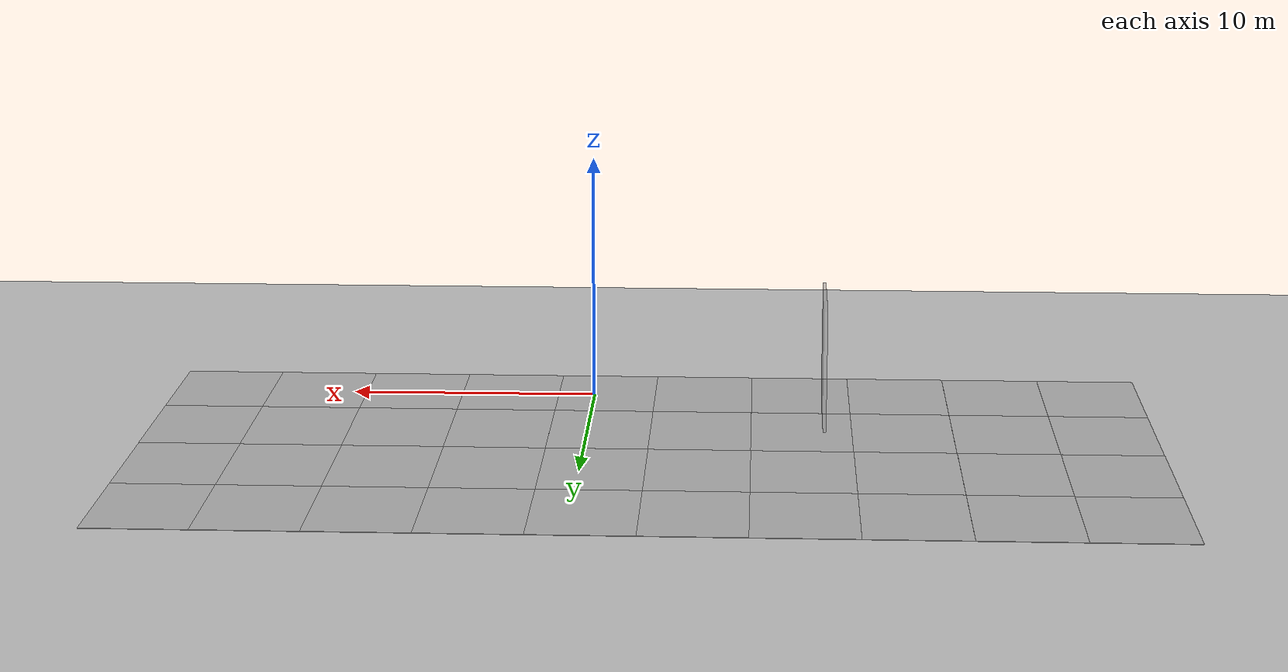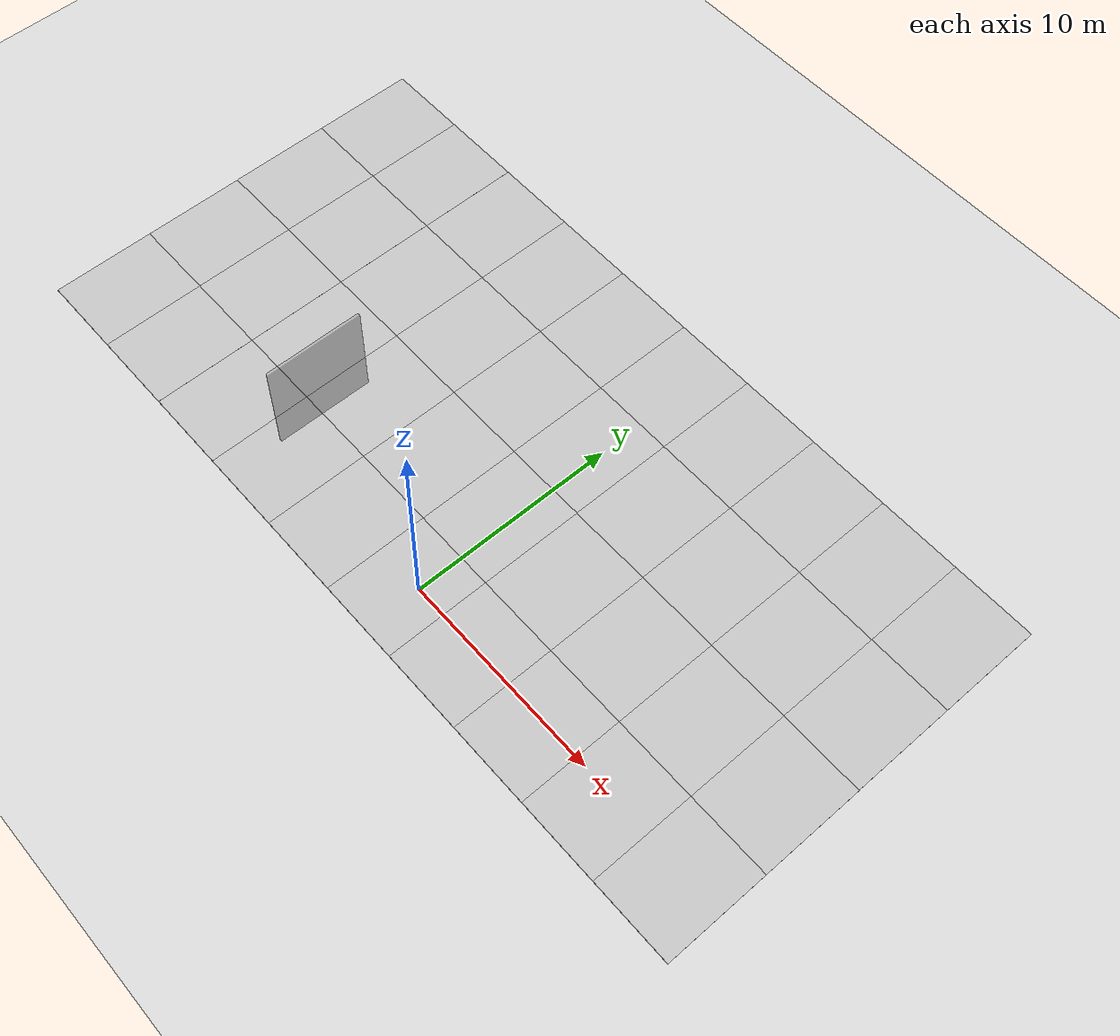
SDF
<sdf version="1.6">
 <world name="default">
  <model name="ground_plane">
   <static>1</static>
   <link name="link">
    <collision name="collision">
     <geometry><plane><normal>0 0 1</normal><size>100 100</size></plane></geometry>
     <surface>
      <contact><collide_bitmask>65535</collide_bitmask></contact>
      <friction><ode><mu>100</mu><mu2>50</mu2></ode></friction>
     </surface>
    </collision>
    <visual name="visual">
     <cast_shadows>0</cast_shadows>
     <geometry><plane><normal>0 0 1</normal><size>100 100</size></plane></geometry>
     <material>
      <script><uri>file://media/materials/scripts/gazebo.material</uri><name>Gazebo/Grey</name></script>
     </material>
    </visual>
   </link>
  </model>
  <model name="Ground_Soil_1">
   <model name="mud_box">
    <static>1</static>
    <link name="link">
     <collision name="collision"><geometry><box><size>8 10 0.02</size></box></geometry></collision>
     <visual name="visual_1">
      <pose>-2 2.5 0 0 -0 0</pose>
      <cast_shadows>0</cast_shadows>
      <geometry><box><size>4 5 0.02</size></box></geometry>
      <material>
       <script>
        <uri>model://mud_box/materials/scripts</uri>
        <uri>model://mud_box/materials/textures</uri>
        <name>vrc/mud</name>
       </script>
      </material>
     </visual>
     <visual name="visual_2">
      <pose>2 2.5 0 0 -0 0</pose>
      <cast_shadows>0</cast_shadows>
      <geometry><box><size>4 5 0.02</size></box></geometry>
      <material>
       <script>
        <uri>model://mud_box/materials/scripts</uri>
        <uri>model://mud_box/materials/textures</uri>
        <name>vrc/mud</name>
       </script>
      </material>
     </visual>
     <visual name="visual_3">
      <pose>2 -2.5 0 0 -0 0</pose>
      <cast_shadows>0</cast_shadows>
      <geometry><box><size>4 5 0.02</size></box></geometry>
      <material>
       <script>
        <uri>model://mud_box/materials/scripts</uri>
        <uri>model://mud_box/materials/textures</uri>
        <name>vrc/mud</name>
       </script>
      </material>
     </visual>
     <visual name="visual_4">
      <pose>-2 -2.5 0 0 -0 0</pose>
      <cast_shadows>0</cast_shadows>
      <geometry><box><size>4 5 0.02</size></box></geometry>
      <material>
       <script>
        <uri>model://mud_box/materials/scripts</uri>
        <uri>model://mud_box/materials/textures</uri>
        <name>vrc/mud</name>
       </script>
      </material>
     </visual>
    </link>
    <pose>-16.0013 0.000118 0 0 -0 0</pose>
   </model>
   <model name="mud_box_0">
    <static>1</static>
    <link name="link">
     <collision name="collision"><geometry><box><size>8 10 0.02</size></box></geometry></collision>
     <visual name="visual_1">
      <pose>-2 2.5 0 0 -0 0</pose>
      <cast_shadows>0</cast_shadows>
      <geometry><box><size>4 5 0.02</size></box></geometry>
      <material>
       <script>
        <uri>model://mud_box/materials/scripts</uri>
        <uri>model://mud_box/materials/textures</uri>
        <name>vrc/mud</name>
       </script>
      </material>
     </visual>
     <visual name="visual_2">
      <pose>2 2.5 0 0 -0 0</pose>
      <cast_shadows>0</cast_shadows>
      <geometry><box><size>4 5 0.02</size></box></geometry>
      <material>
       <script>
        <uri>model://mud_box/materials/scripts</uri>
        <uri>model://mud_box/materials/textures</uri>
        <name>vrc/mud</name>
       </script>
      </material>
     </visual>
     <visual name="visual_3">
      <pose>2 -2.5 0 0 -0 0</pose>
      <cast_shadows>0</cast_shadows>
      <geometry><box><size>4 5 0.02</size></box></geometry>
      <material>
       <script>
        <uri>model://mud_box/materials/scripts</uri>
        <uri>model://mud_box/materials/textures</uri>
        <name>vrc/mud</name>
       </script>
      </material>
     </visual>
     <visual name="visual_4">
      <pose>-2 -2.5 0 0 -0 0</pose>
      <cast_shadows>0</cast_shadows>
      <geometry><box><size>4 5 0.02</size></box></geometry>
      <material>
       <script>
        <uri>model://mud_box/materials/scripts</uri>
        <uri>model://mud_box/materials/textures</uri>
        <name>vrc/mud</name>
       </script>
      </material>
     </visual>
    </link>
    <pose>-7.99939 9.1e-05 0 0 -0 0</pose>
   </model>
   <model name="mud_box_1">
    <static>1</static>
    <link name="link">
     <collision name="collision"><geometry><box><size>8 10 0.02</size></box></geometry></collision>
     <visual name="visual_1">
      <pose>-2 2.5 0 0 -0 0</pose>
      <cast_shadows>0</cast_shadows>
      <geometry><box><size>4 5 0.02</size></box></geometry>
      <material>
       <script>
        <uri>model://mud_box/materials/scripts</uri>
        <uri>model://mud_box/materials/textures</uri>
        <name>vrc/mud</name>
       </script>
      </material>
     </visual>
     <visual name="visual_2">
      <pose>2 2.5 0 0 -0 0</pose>
      <cast_shadows>0</cast_shadows>
      <geometry><box><size>4 5 0.02</size></box></geometry>
      <material>
       <script>
        <uri>model://mud_box/materials/scripts</uri>
        <uri>model://mud_box/materials/textures</uri>
        <name>vrc/mud</name>
       </script>
      </material>
     </visual>
     <visual name="visual_3">
      <pose>2 -2.5 0 0 -0 0</pose>
      <cast_shadows>0</cast_shadows>
      <geometry><box><size>4 5 0.02</size></box></geometry>
      <material>
       <script>
        <uri>model://mud_box/materials/scripts</uri>
        <uri>model://mud_box/materials/textures</uri>
        <name>vrc/mud</name>
       </script>
      </material>
     </visual>
     <visual name="visual_4">
      <pose>-2 -2.5 0 0 -0 0</pose>
      <cast_shadows>0</cast_shadows>
      <geometry><box><size>4 5 0.02</size></box></geometry>
      <material>
       <script>
        <uri>model://mud_box/materials/scripts</uri>
        <uri>model://mud_box/materials/textures</uri>
        <name>vrc/mud</name>
       </script>
      </material>
     </visual>
    </link>
    <pose>0.000809 -0.000342 0 0 -0 0</pose>
   </model>
   <model name="mud_box_2">
    <static>1</static>
    <link name="link">
     <collision name="collision"><geometry><box><size>8 10 0.02</size></box></geometry></collision>
     <visual name="visual_1">
      <pose>-2 2.5 0 0 -0 0</pose>
      <cast_shadows>0</cast_shadows>
      <geometry><box><size>4 5 0.02</size></box></geometry>
      <material>
       <script>
        <uri>model://mud_box/materials/scripts</uri>
        <uri>model://mud_box/materials/textures</uri>
        <name>vrc/mud</name>
       </script>
      </material>
     </visual>
     <visual name="visual_2">
      <pose>2 2.5 0 0 -0 0</pose>
      <cast_shadows>0</cast_shadows>
      <geometry><box><size>4 5 0.02</size></box></geometry>
      <material>
       <script>
        <uri>model://mud_box/materials/scripts</uri>
        <uri>model://mud_box/materials/textures</uri>
        <name>vrc/mud</name>
       </script>
      </material>
     </visual>
     <visual name="visual_3">
      <pose>2 -2.5 0 0 -0 0</pose>
      <cast_shadows>0</cast_shadows>
      <geometry><box><size>4 5 0.02</size></box></geometry>
      <material>
       <script>
        <uri>model://mud_box/materials/scripts</uri>
        <uri>model://mud_box/materials/textures</uri>
        <name>vrc/mud</name>
       </script>
      </material>
     </visual>
     <visual name="visual_4">
      <pose>-2 -2.5 0 0 -0 0</pose>
      <cast_shadows>0</cast_shadows>
      <geometry><box><size>4 5 0.02</size></box></geometry>
      <material>
       <script>
        <uri>model://mud_box/materials/scripts</uri>
        <uri>model://mud_box/materials/textures</uri>
        <name>vrc/mud</name>
       </script>
      </material>
     </visual>
    </link>
    <pose>8.00089 -0.000148 0 0 -0 0</pose>
   </model>
   <model name="mud_box_3">
    <static>1</static>
    <link name="link">
     <collision name="collision"><geometry><box><size>8 10 0.02</size></box></geometry></collision>
     <visual name="visual_1">
      <pose>-2 2.5 0 0 -0 0</pose>
      <cast_shadows>0</cast_shadows>
      <geometry><box><size>4 5 0.02</size></box></geometry>
      <material>
       <script>
        <uri>model://mud_box/materials/scripts</uri>
        <uri>model://mud_box/materials/textures</uri>
        <name>vrc/mud</name>
       </script>
      </material>
     </visual>
     <visual name="visual_2">
      <pose>2 2.5 0 0 -0 0</pose>
      <cast_shadows>0</cast_shadows>
      <geometry><box><size>4 5 0.02</size></box></geometry>
      <material>
       <script>
        <uri>model://mud_box/materials/scripts</uri>
        <uri>model://mud_box/materials/textures</uri>
        <name>vrc/mud</name>
       </script>
      </material>
     </visual>
     <visual name="visual_3">
      <pose>2 -2.5 0 0 -0 0</pose>
      <cast_shadows>0</cast_shadows>
      <geometry><box><size>4 5 0.02</size></box></geometry>
      <material>
       <script>
        <uri>model://mud_box/materials/scripts</uri>
        <uri>model://mud_box/materials/textures</uri>
        <name>vrc/mud</name>
       </script>
      </material>
     </visual>
     <visual name="visual_4">
      <pose>-2 -2.5 0 0 -0 0</pose>
      <cast_shadows>0</cast_shadows>
      <geometry><box><size>4 5 0.02</size></box></geometry>
      <material>
       <script>
        <uri>model://mud_box/materials/scripts</uri>
        <uri>model://mud_box/materials/textures</uri>
        <name>vrc/mud</name>
       </script>
      </material>
     </visual>
    </link>
    <pose>15.9991 0.000313 0 0 -0 0</pose>
   </model>
   <static>0</static>
   <pose>-2.5027 2.22713 0 0 -0 0</pose>
  </model>
  <model name="Ground_Soil_2">
   <model name="mud_box">
    <static>1</static>
    <link name="link">
     <collision name="collision"><geometry><box><size>8 10 0.02</size></box></geometry></collision>
     <visual name="visual_1">
      <pose>-2 2.5 0 0 -0 0</pose>
      <cast_shadows>0</cast_shadows>
      <geometry><box><size>4 5 0.02</size></box></geometry>
      <material>
       <script>
        <uri>model://mud_box/materials/scripts</uri>
        <uri>model://mud_box/materials/textures</uri>
        <name>vrc/mud</name>
       </script>
      </material>
     </visual>
     <visual name="visual_2">
      <pose>2 2.5 0 0 -0 0</pose>
      <cast_shadows>0</cast_shadows>
      <geometry><box><size>4 5 0.02</size></box></geometry>
      <material>
       <script>
        <uri>model://mud_box/materials/scripts</uri>
        <uri>model://mud_box/materials/textures</uri>
        <name>vrc/mud</name>
       </script>
      </material>
     </visual>
     <visual name="visual_3">
      <pose>2 -2.5 0 0 -0 0</pose>
      <cast_shadows>0</cast_shadows>
      <geometry><box><size>4 5 0.02</size></box></geometry>
      <material>
       <script>
        <uri>model://mud_box/materials/scripts</uri>
        <uri>model://mud_box/materials/textures</uri>
        <name>vrc/mud</name>
       </script>
      </material>
     </visual>
     <visual name="visual_4">
      <pose>-2 -2.5 0 0 -0 0</pose>
      <cast_shadows>0</cast_shadows>
      <geometry><box><size>4 5 0.02</size></box></geometry>
      <material>
       <script>
        <uri>model://mud_box/materials/scripts</uri>
        <uri>model://mud_box/materials/textures</uri>
        <name>vrc/mud</name>
       </script>
      </material>
     </visual>
    </link>
    <pose>-16.0013 0.000118 0 0 -0 0</pose>
   </model>
   <model name="mud_box_0">
    <static>1</static>
    <link name="link">
     <collision name="collision"><geometry><box><size>8 10 0.02</size></box></geometry></collision>
     <visual name="visual_1">
      <pose>-2 2.5 0 0 -0 0</pose>
      <cast_shadows>0</cast_shadows>
      <geometry><box><size>4 5 0.02</size></box></geometry>
      <material>
       <script>
        <uri>model://mud_box/materials/scripts</uri>
        <uri>model://mud_box/materials/textures</uri>
        <name>vrc/mud</name>
       </script>
      </material>
     </visual>
     <visual name="visual_2">
      <pose>2 2.5 0 0 -0 0</pose>
      <cast_shadows>0</cast_shadows>
      <geometry><box><size>4 5 0.02</size></box></geometry>
      <material>
       <script>
        <uri>model://mud_box/materials/scripts</uri>
        <uri>model://mud_box/materials/textures</uri>
        <name>vrc/mud</name>
       </script>
      </material>
     </visual>
     <visual name="visual_3">
      <pose>2 -2.5 0 0 -0 0</pose>
      <cast_shadows>0</cast_shadows>
      <geometry><box><size>4 5 0.02</size></box></geometry>
      <material>
       <script>
        <uri>model://mud_box/materials/scripts</uri>
        <uri>model://mud_box/materials/textures</uri>
        <name>vrc/mud</name>
       </script>
      </material>
     </visual>
     <visual name="visual_4">
      <pose>-2 -2.5 0 0 -0 0</pose>
      <cast_shadows>0</cast_shadows>
      <geometry><box><size>4 5 0.02</size></box></geometry>
      <material>
       <script>
        <uri>model://mud_box/materials/scripts</uri>
        <uri>model://mud_box/materials/textures</uri>
        <name>vrc/mud</name>
       </script>
      </material>
     </visual>
    </link>
    <pose>-7.99939 9.1e-05 0 0 -0 0</pose>
   </model>
   <model name="mud_box_1">
    <static>1</static>
    <link name="link">
     <collision name="collision"><geometry><box><size>8 10 0.02</size></box></geometry></collision>
     <visual name="visual_1">
      <pose>-2 2.5 0 0 -0 0</pose>
      <cast_shadows>0</cast_shadows>
      <geometry><box><size>4 5 0.02</size></box></geometry>
      <material>
       <script>
        <uri>model://mud_box/materials/scripts</uri>
        <uri>model://mud_box/materials/textures</uri>
        <name>vrc/mud</name>
       </script>
      </material>
     </visual>
     <visual name="visual_2">
      <pose>2 2.5 0 0 -0 0</pose>
      <cast_shadows>0</cast_shadows>
      <geometry><box><size>4 5 0.02</size></box></geometry>
      <material>
       <script>
        <uri>model://mud_box/materials/scripts</uri>
        <uri>model://mud_box/materials/textures</uri>
        <name>vrc/mud</name>
       </script>
      </material>
     </visual>
     <visual name="visual_3">
      <pose>2 -2.5 0 0 -0 0</pose>
      <cast_shadows>0</cast_shadows>
      <geometry><box><size>4 5 0.02</size></box></geometry>
      <material>
       <script>
        <uri>model://mud_box/materials/scripts</uri>
        <uri>model://mud_box/materials/textures</uri>
        <name>vrc/mud</name>
       </script>
      </material>
     </visual>
     <visual name="visual_4">
      <pose>-2 -2.5 0 0 -0 0</pose>
      <cast_shadows>0</cast_shadows>
      <geometry><box><size>4 5 0.02</size></box></geometry>
      <material>
       <script>
        <uri>model://mud_box/materials/scripts</uri>
        <uri>model://mud_box/materials/textures</uri>
        <name>vrc/mud</name>
       </script>
      </material>
     </visual>
    </link>
    <pose>0.000809 -0.000342 0 0 -0 0</pose>
   </model>
   <model name="mud_box_2">
    <static>1</static>
    <link name="link">
     <collision name="collision"><geometry><box><size>8 10 0.02</size></box></geometry></collision>
     <visual name="visual_1">
      <pose>-2 2.5 0 0 -0 0</pose>
      <cast_shadows>0</cast_shadows>
      <geometry><box><size>4 5 0.02</size></box></geometry>
      <material>
       <script>
        <uri>model://mud_box/materials/scripts</uri>
        <uri>model://mud_box/materials/textures</uri>
        <name>vrc/mud</name>
       </script>
      </material>
     </visual>
     <visual name="visual_2">
      <pose>2 2.5 0 0 -0 0</pose>
      <cast_shadows>0</cast_shadows>
      <geometry><box><size>4 5 0.02</size></box></geometry>
      <material>
       <script>
        <uri>model://mud_box/materials/scripts</uri>
        <uri>model://mud_box/materials/textures</uri>
        <name>vrc/mud</name>
       </script>
      </material>
     </visual>
     <visual name="visual_3">
      <pose>2 -2.5 0 0 -0 0</pose>
      <cast_shadows>0</cast_shadows>
      <geometry><box><size>4 5 0.02</size></box></geometry>
      <material>
       <script>
        <uri>model://mud_box/materials/scripts</uri>
        <uri>model://mud_box/materials/textures</uri>
        <name>vrc/mud</name>
       </script>
      </material>
     </visual>
     <visual name="visual_4">
      <pose>-2 -2.5 0 0 -0 0</pose>
      <cast_shadows>0</cast_shadows>
      <geometry><box><size>4 5 0.02</size></box></geometry>
      <material>
       <script>
        <uri>model://mud_box/materials/scripts</uri>
        <uri>model://mud_box/materials/textures</uri>
        <name>vrc/mud</name>
       </script>
      </material>
     </visual>
    </link>
    <pose>8.00089 -0.000148 0 0 -0 0</pose>
   </model>
   <model name="mud_box_3">
    <static>1</static>
    <link name="link">
     <collision name="collision"><geometry><box><size>8 10 0.02</size></box></geometry></collision>
     <visual name="visual_1">
      <pose>-2 2.5 0 0 -0 0</pose>
      <cast_shadows>0</cast_shadows>
      <geometry><box><size>4 5 0.02</size></box></geometry>
      <material>
       <script>
        <uri>model://mud_box/materials/scripts</uri>
        <uri>model://mud_box/materials/textures</uri>
        <name>vrc/mud</name>
       </script>
      </material>
     </visual>
     <visual name="visual_2">
      <pose>2 2.5 0 0 -0 0</pose>
      <cast_shadows>0</cast_shadows>
      <geometry><box><size>4 5 0.02</size></box></geometry>
      <material>
       <script>
        <uri>model://mud_box/materials/scripts</uri>
        <uri>model://mud_box/materials/textures</uri>
        <name>vrc/mud</name>
       </script>
      </material>
     </visual>
     <visual name="visual_3">
      <pose>2 -2.5 0 0 -0 0</pose>
      <cast_shadows>0</cast_shadows>
      <geometry><box><size>4 5 0.02</size></box></geometry>
      <material>
       <script>
        <uri>model://mud_box/materials/scripts</uri>
        <uri>model://mud_box/materials/textures</uri>
        <name>vrc/mud</name>
       </script>
      </material>
     </visual>
     <visual name="visual_4">
      <pose>-2 -2.5 0 0 -0 0</pose>
      <cast_shadows>0</cast_shadows>
      <geometry><box><size>4 5 0.02</size></box></geometry>
      <material>
       <script>
        <uri>model://mud_box/materials/scripts</uri>
        <uri>model://mud_box/materials/textures</uri>
        <name>vrc/mud</name>
       </script>
      </material>
     </visual>
    </link>
    <pose>15.9991 0.000313 0 0 -0 0</pose>
   </model>
   <static>0</static>
   <pose>-2.5134 12.2138 0 0 -0 0</pose>
  </model>
  <model name="wall_0_clone_0_clone_0_clone">
   <link name="link">
    <inertial>
     <mass>2.87883</mass>
     <inertia><ixx>11.0771</ixx><ixy>0</ixy><ixz>0</ixz><iyy>5.80298</iyy><iyz>0</iyz><izz>5.28163</izz></inertia>
    </inertial>
    <pose>0 -0.040293 1.94803 0 -0 0</pose>
    <visual name="visual">
     <geometry><box><size>0.12484 4.69043 4.91663</size></box></geometry>
     <material>
      <script><name>Gazebo/Grey</name><uri>file://media/materials/scripts/gazebo.material</uri></script>
      <ambient>0.3 0.3 0.3 1</ambient>
      <diffuse>0.7 0.7 0.7 1</diffuse>
      <specular>0.01 0.01 0.01 1</specular>
      <emissive>0 0 0 1</emissive>
      <shader type="vertex"><normal_map>__default__</normal_map></shader>
     </material>
     <transparency>0.5</transparency>
    </visual>
    <collision name="collision">
     <geometry><box><size>0.12484 4.69043 4.91663</size></box></geometry>
     <surface>
      <friction>
       <ode><mu>1</mu><mu2>1</mu2><fdir1>0 0 0</fdir1><slip1>0</slip1><slip2>0</slip2></ode>
       <torsional>
        <coefficient>1</coefficient>
        <patch_radius>0</patch_radius>
        <surface_radius>0</surface_radius>
        <use_patch_radius>1</use_patch_radius>
        <ode><slip>0</slip></ode>
       </torsional>
      </friction>
      <bounce><restitution_coefficient>0</restitution_coefficient><threshold>1e+06</threshold></bounce>
      <contact>
       <collide_without_contact>0</collide_without_contact>
       <collide_without_contact_bitmask>1</collide_without_contact_bitmask>
       <collide_bitmask>1</collide_bitmask>
       <ode>
        <soft_cfm>0</soft_cfm>
        <soft_erp>0.2</soft_erp>
        <kp>1e+13</kp>
        <kd>1</kd>
        <max_vel>0.01</max_vel>
        <min_depth>0</min_depth>
       </ode>
       <bullet>
        <split_impulse>1</split_impulse>
        <split_impulse_penetration_threshold>-0.01</split_impulse_penetration_threshold>
        <soft_cfm>0</soft_cfm>
        <soft_erp>0.2</soft_erp>
        <kp>1e+13</kp>
        <kd>1</kd>
       </bullet>
      </contact>
     </surface>
    </collision>
   </link>
   <static>0</static>
   <pose>-9.42696 2.42804 0.520285 0 1e-06 -0.003673</pose>
  </model>
 </world>
</sdf>
